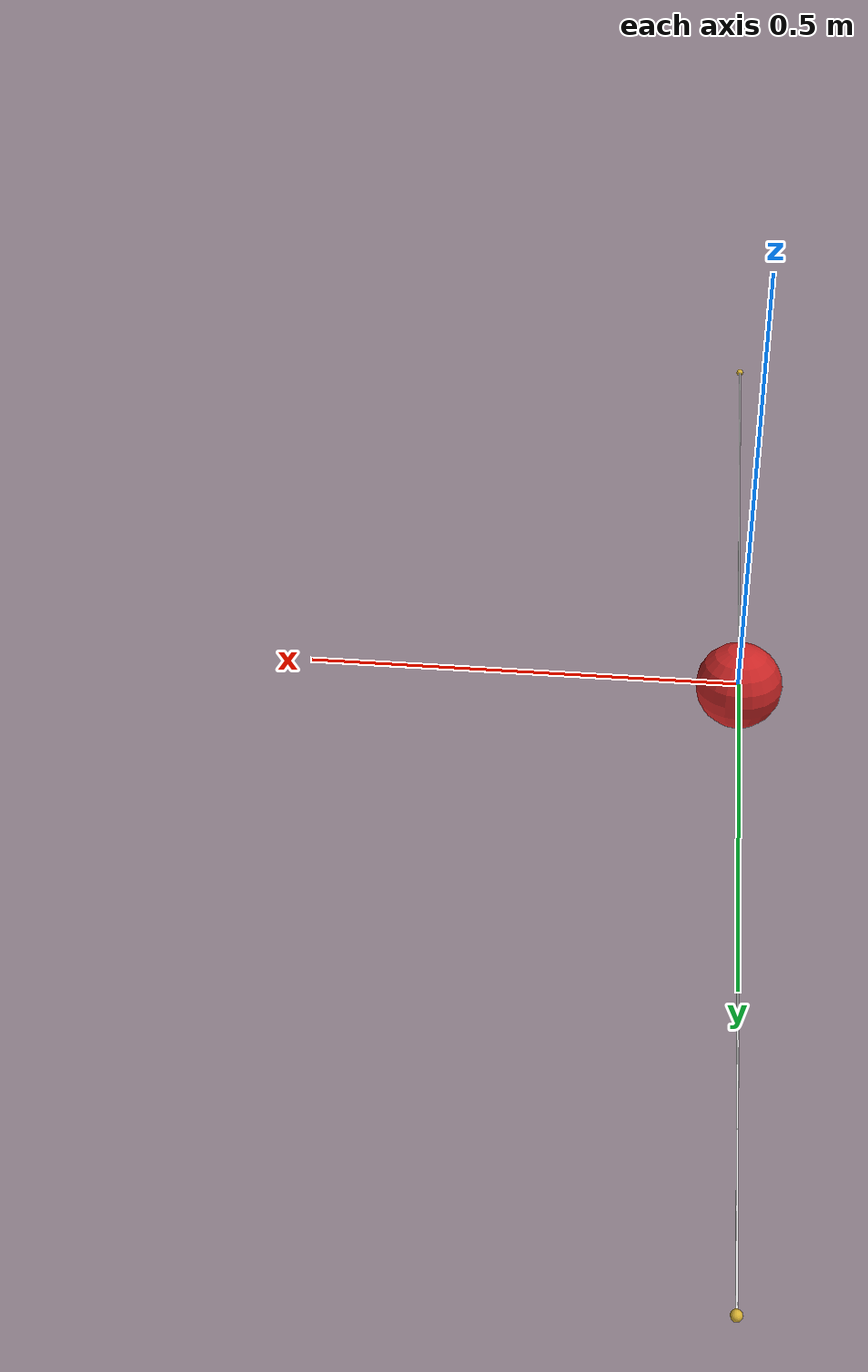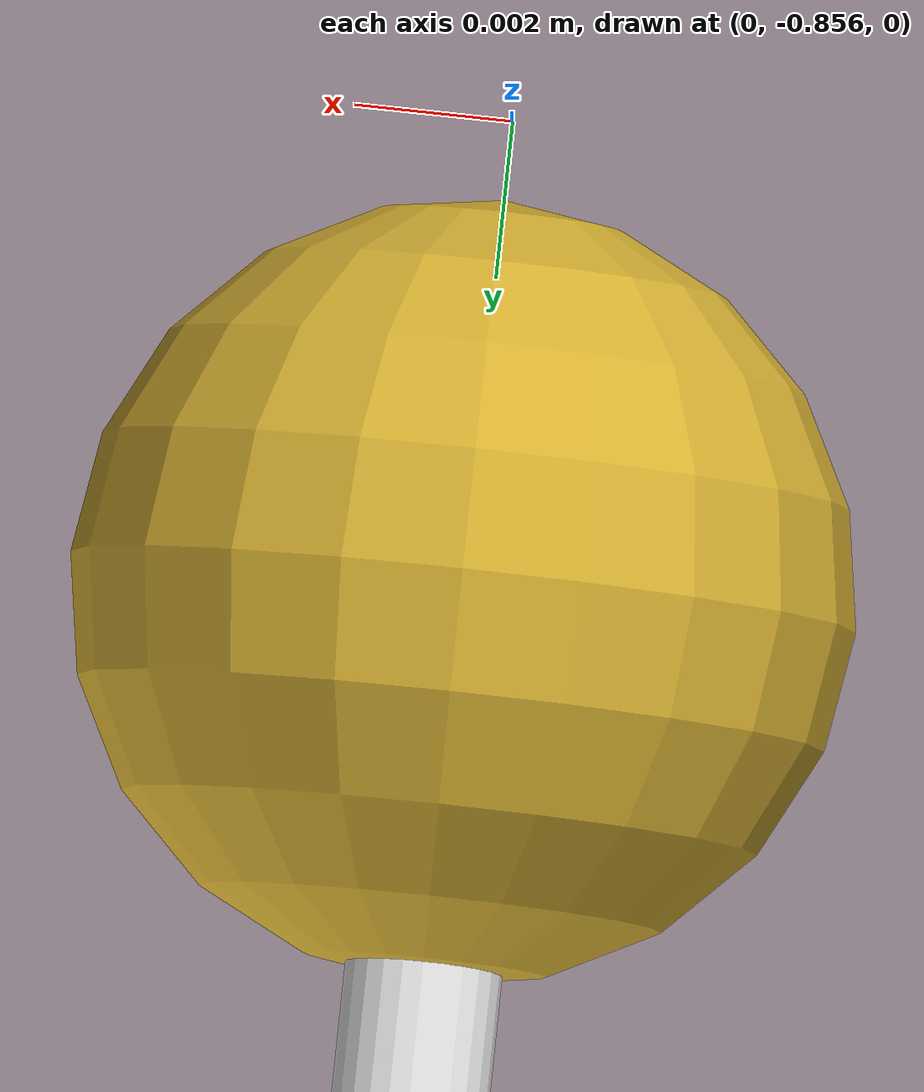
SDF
<?xml version='1.0'?>
<sdf version='1.6'>
  <enable_lockstep>false</enable_lockstep>
  <model name='double_slung_load_point_mass'>
    <static>false</static>

    <include>
      <uri>model://ball_hinge</uri>
      <name>ball_hinge_0</name>
      <pose>0 0.85 0 -1.57 0 0</pose>
    </include>

    <include>
      <uri>model://ball_hinge</uri>
      <name>ball_hinge_1</name>
      <pose>0 -0.85 0 1.57 0 0</pose>
    </include>

    <include>
      <uri>model://pendulum</uri>
      <name>pendulum_0</name>
      <pose>0 0.425 0 -1.57 0 0</pose>
    </include>

    <include>
      <uri>model://pendulum</uri>
      <name>pendulum_1</name>
      <pose>0 -0.425 0 1.57 0 0</pose>
    </include>

    <include>
      <uri>model://load_point_mass</uri>
      <name>load</name>
      <pose>0 0 0 0 0 0</pose>
    </include>

    <joint name="load_0_joint" type="ball">
      <pose>0 0 0 0 0 0</pose>
      <child>load::base_link</child>
      <parent>pendulum_0::base_link</parent>
    </joint>

    <joint name="load_1_joint" type="ball">
      <pose>0 0 0 0 0 0</pose>
      <child>load::base_link</child>
      <parent>pendulum_1::base_link</parent>
    </joint>

    <joint name="ball_hinge_0_joint" type="ball">
      <pose>0 0 0.425 0 0 0</pose>
      <child>pendulum_0::base_link</child>
      <parent>ball_hinge_0::base_link</parent>
    </joint>

    <joint name="ball_hinge_1_joint" type="ball">
      <pose>0 0 0.425 0 0 0</pose>
      <child>pendulum_1::base_link</child>
      <parent>ball_hinge_1::base_link</parent>
    </joint>

  </model>
</sdf>

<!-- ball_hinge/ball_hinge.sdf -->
<sdf version='1.6'>
  <enable_lockstep>false</enable_lockstep>
  <model name='ball_hinge'>
  <static>false</static>
    <link name='base_link'>
      <pose>0 0 0 0 0 0</pose>
      <inertial>
        <mass>0.05</mass>
        <inertia>
          <ixx>0.000001</ixx> <!-- 2/5*MR^2-->
          <ixy>0</ixy>
          <ixz>0</ixz>
          <iyy>0.000001</iyy>
          <iyz>0</iyz>
          <izz>0.000001</izz>
        </inertia>
      </inertial>
      <visual name='base_visual'>
        <geometry>
          <sphere>
            <radius>0.005 0.005 0.005</radius>
          </sphere>
        </geometry>
        <material>
          <script>
            <name>Gazebo/Gold</name>
            <uri>file://media/materials/scripts/gazebo.material</uri>
          </script>
        </material>
      </visual>
      <gravity>1</gravity>
    </link>
  </model>
</sdf>

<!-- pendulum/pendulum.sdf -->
<sdf version='1.6'>
  <enable_lockstep>false</enable_lockstep>
  <model name='pendulum'>
    <static>false</static>
    <link name='base_link'>
      <pose>0 0 0 0 0 0</pose>
      <inertial>
        <mass>0.01</mass>
        <inertia>
          <ixx>0.00060208</ixx>
          <ixy>0</ixy>
          <ixz>0</ixz>
          <iyy>0.00060208</iyy>
          <iyz>0</iyz>
          <izz>0.000000005</izz>
        </inertia>
      </inertial>
      <visual name='base_visual'>
        <geometry>
          <cylinder>
            <radius>0.001</radius>
            <length>0.85</length>
          </cylinder>
        </geometry>
        <material>
          <script>
            <name>Gazebo/White</name>
            <uri>file://media/materials/scripts/gazebo.material</uri>
          </script>
        </material>
      </visual>
      <gravity>1</gravity>
    </link>
  </model>
</sdf>

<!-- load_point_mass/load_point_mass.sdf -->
<sdf version='1.6'>
  <enable_lockstep>false</enable_lockstep>
  <model name='load_point_mass'>
  <static>false</static>
    <link name='base_link'>
      <pose>0 0 0 0 0 0</pose>
      <inertial>
        <mass>0.25</mass>
        <inertia>
          <ixx>0.00025</ixx>
          <ixy>0</ixy>
          <ixz>0</ixz>
          <iyy>0.00025</iyy>
          <iyz>0</iyz>
          <izz>0.00025</izz>
        </inertia>
      </inertial>
      <collision name='base_collision'>
        <geometry>
          <sphere>
            <radius>0.05 0.05 0.05</radius>
          </sphere>
        </geometry>
        <surface>
          <contact>
            <ode/>
          </contact>
          <friction>
            <ode/>
          </friction>
        </surface>
      </collision>
      <visual name='base_visual'>
        <geometry>
          <sphere>
            <radius>0.05 0.05 0.05</radius>
          </sphere>
        </geometry>
        <material>
          <script>
            <name>Gazebo/Red</name>
            <uri>file://media/materials/scripts/gazebo.material</uri>
          </script>
        </material>
      </visual>
      <gravity>1</gravity>
    </link>
  </model>
</sdf>
